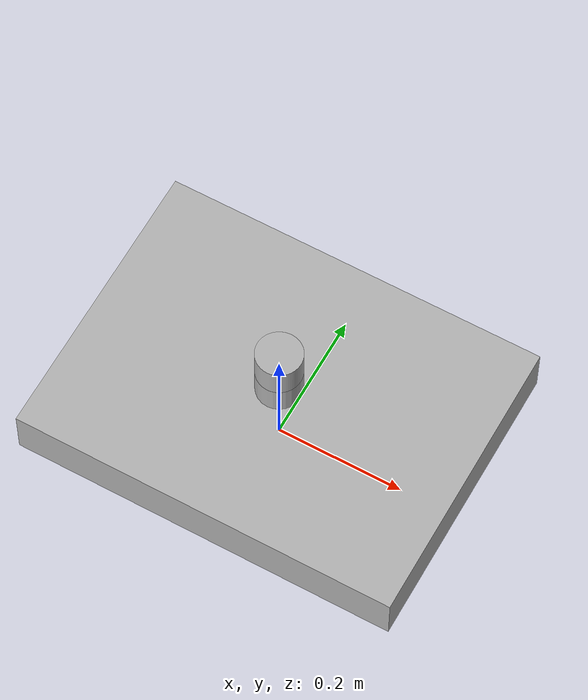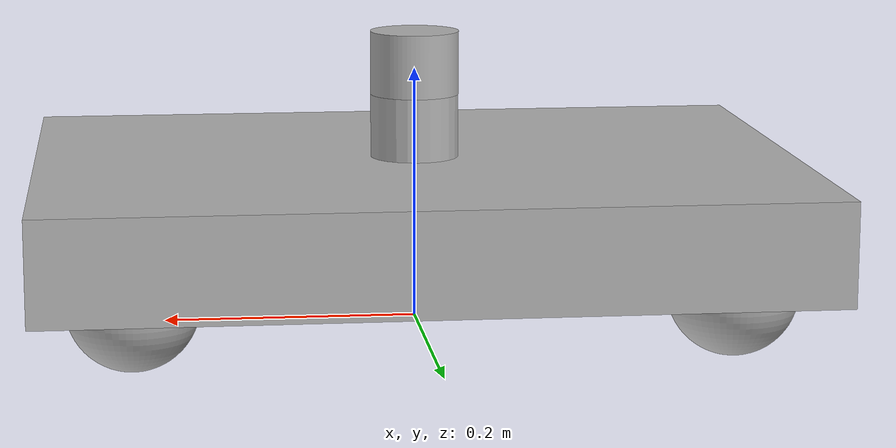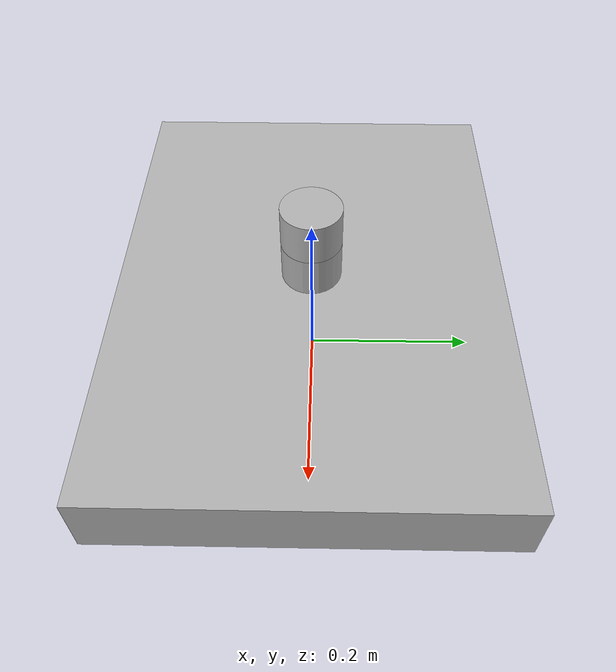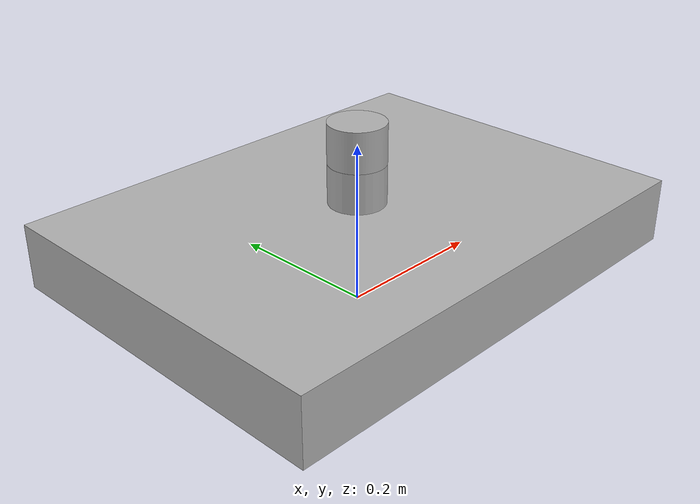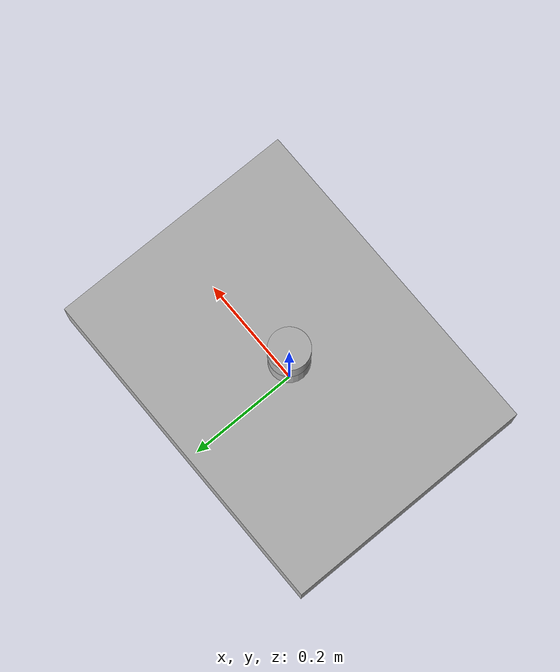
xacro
<?xml version="1.0" ?>
<robot name="planar_move_robot" xmlns:xacro="http://www.ros.org/wiki/xacro">

<xacro:include filename="$(find planar_move_robot_description)/urdf/materials.xacro" />
<xacro:include filename="$(find planar_move_robot_description)/urdf/planar_move_robot.trans" />
<xacro:include filename="$(find planar_move_robot_description)/urdf/planar_move_robot.gazebo" />
<link name="base_link">
  <inertial>
    <origin rpy="0 0 0" xyz="5.4320949295462994e-14 -2.805834157823502e-17 0.09167558624777426"/>
    <mass value="162.85001624086075"/>
    <inertia ixx="2.764455" ixy="0.0" ixz="0.0" iyy="4.758729" iyz="-0.0" izz="7.339706"/>
  </inertial>
  <visual>
    <origin rpy="0 0 0" xyz="0 0 0"/>
    <geometry>
      <mesh filename="package://planar_move_robot_description/meshes/base_link.stl" scale="0.001 0.001 0.001"/>
    </geometry>
    <material name="silver"/>
  </visual>
  <collision>
    <origin rpy="0 0 0" xyz="0 0 0"/>
    <geometry>
      <mesh filename="package://planar_move_robot_description/meshes/base_link.stl" scale="0.001 0.001 0.001"/>
    </geometry>
  </collision>
</link>

<link name="laser">
  <inertial>
    <origin rpy="0 0 0" xyz="-5.908186836859213e-18 0.0 0.024999999999999994"/>
    <mass value="1.5105170177541423"/>
    <inertia ixx="0.000777" ixy="-0.0" ixz="-0.0" iyy="0.000777" iyz="0.0" izz="0.000925"/>
  </inertial>
  <visual>
    <origin rpy="0 0 0" xyz="-0.0 -0.0 -0.18"/>
    <geometry>
      <mesh filename="package://planar_move_robot_description/meshes/lidar_1.stl" scale="0.001 0.001 0.001"/>
    </geometry>
    <material name="silver"/>
  </visual>
  <collision>
    <origin rpy="0 0 0" xyz="-0.0 -0.0 -0.18"/>
    <geometry>
      <mesh filename="package://planar_move_robot_description/meshes/lidar_1.stl" scale="0.001 0.001 0.001"/>
    </geometry>
  </collision>
</link>

<link name="rear_r_1">
  <inertial>
    <origin rpy="0 0 0" xyz="0.0 0.0 0.0"/>
    <mass value="0.4869468613064179"/>
    <inertia ixx="0.000487" ixy="0.0" ixz="-0.0" iyy="0.000487" iyz="0.0" izz="0.000487"/>
  </inertial>
  <visual>
    <origin rpy="0 0 0" xyz="0.225 0.15 -0.05"/>
    <geometry>
      <mesh filename="package://planar_move_robot_description/meshes/rear_r_1.stl" scale="0.001 0.001 0.001"/>
    </geometry>
    <material name="silver"/>
  </visual>
  <collision>
    <origin rpy="0 0 0" xyz="0.225 0.15 -0.05"/>
    <geometry>
      <mesh filename="package://planar_move_robot_description/meshes/rear_r_1.stl" scale="0.001 0.001 0.001"/>
    </geometry>
  </collision>
</link>

<link name="front_r_1">
  <inertial>
    <origin rpy="0 0 0" xyz="0.0 0.0 0.0"/>
    <mass value="0.4869468613064179"/>
    <inertia ixx="0.000487" ixy="0.0" ixz="0.0" iyy="0.000487" iyz="0.0" izz="0.000487"/>
  </inertial>
  <visual>
    <origin rpy="0 0 0" xyz="-0.225 0.15 -0.05"/>
    <geometry>
      <mesh filename="package://planar_move_robot_description/meshes/front_r_1.stl" scale="0.001 0.001 0.001"/>
    </geometry>
    <material name="silver"/>
  </visual>
  <collision>
    <origin rpy="0 0 0" xyz="-0.225 0.15 -0.05"/>
    <geometry>
      <mesh filename="package://planar_move_robot_description/meshes/front_r_1.stl" scale="0.001 0.001 0.001"/>
    </geometry>
  </collision>
</link>

<link name="front_l_1">
  <inertial>
    <origin rpy="0 0 0" xyz="0.0 0.0 0.0"/>
    <mass value="0.4869468613064179"/>
    <inertia ixx="0.000487" ixy="0.0" ixz="0.0" iyy="0.000487" iyz="0.0" izz="0.000487"/>
  </inertial>
  <visual>
    <origin rpy="0 0 0" xyz="-0.225 -0.15 -0.05"/>
    <geometry>
      <mesh filename="package://planar_move_robot_description/meshes/front_l_1.stl" scale="0.001 0.001 0.001"/>
    </geometry>
    <material name="silver"/>
  </visual>
  <collision>
    <origin rpy="0 0 0" xyz="-0.225 -0.15 -0.05"/>
    <geometry>
      <mesh filename="package://planar_move_robot_description/meshes/front_l_1.stl" scale="0.001 0.001 0.001"/>
    </geometry>
  </collision>
</link>

<link name="rear_l_1">
  <inertial>
    <origin rpy="0 0 0" xyz="0.0 0.0 0.0"/>
    <mass value="0.4869468613064179"/>
    <inertia ixx="0.000487" ixy="0.0" ixz="-0.0" iyy="0.000487" iyz="-0.0" izz="0.000487"/>
  </inertial>
  <visual>
    <origin rpy="0 0 0" xyz="0.225 -0.15 -0.05"/>
    <geometry>
      <mesh filename="package://planar_move_robot_description/meshes/rear_l_1.stl" scale="0.001 0.001 0.001"/>
    </geometry>
    <material name="silver"/>
  </visual>
  <collision>
    <origin rpy="0 0 0" xyz="0.225 -0.15 -0.05"/>
    <geometry>
      <mesh filename="package://planar_move_robot_description/meshes/rear_l_1.stl" scale="0.001 0.001 0.001"/>
    </geometry>
  </collision>
</link>

<joint name="Rigid1" type="fixed">
  <origin rpy="0 0 0" xyz="0.0 0.0 0.18"/>
  <parent link="base_link"/>
  <child link="laser"/>
</joint>

<joint name="Rigid2" type="fixed">
  <origin rpy="0 0 0" xyz="-0.225 -0.15 0.05"/>
  <parent link="base_link"/>
  <child link="rear_r_1"/>
</joint>

<joint name="Rigid3" type="fixed">
  <origin rpy="0 0 0" xyz="0.225 -0.15 0.05"/>
  <parent link="base_link"/>
  <child link="front_r_1"/>
</joint>

<joint name="Rigid4" type="fixed">
  <origin rpy="0 0 0" xyz="0.225 0.15 0.05"/>
  <parent link="base_link"/>
  <child link="front_l_1"/>
</joint>

<joint name="Rigid5" type="fixed">
  <origin rpy="0 0 0" xyz="-0.225 0.15 0.05"/>
  <parent link="base_link"/>
  <child link="rear_l_1"/>
</joint>

</robot>

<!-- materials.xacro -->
<robot name="planar_move_robot" xmlns:xacro="http://www.ros.org/wiki/xacro" >

<material name="silver">
  <color rgba="0.700 0.700 0.700 1.000"/>
</material>

</robot>

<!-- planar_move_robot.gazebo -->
<robot name="planar_move_robot" xmlns:xacro="http://www.ros.org/wiki/xacro" >

<xacro:property name="body_color" value="Gazebo/Silver" />

<gazebo>
  <plugin filename="libgazebo_ros_control.so" name="control"/>
</gazebo>
<gazebo reference="base_link">
  <material>${body_color}</material>
  <mu1>0.2</mu1>
  <mu2>0.2</mu2>
  <selfCollide>true</selfCollide>
  <gravity>true</gravity>
</gazebo>

<gazebo reference="laser">
  <material>${body_color}</material>
  <mu1>0.2</mu1>
  <mu2>0.2</mu2>
  <selfCollide>true</selfCollide>
</gazebo>

<gazebo reference="rear_r_1">
  <material>${body_color}</material>
  <mu1>0.0002</mu1>
  <mu2>0.0002</mu2>
  <selfCollide>true</selfCollide>
</gazebo>

<gazebo reference="front_r_1">
  <material>${body_color}</material>
  <mu1>0.0002</mu1>
  <mu2>0.0002</mu2>
  <selfCollide>true</selfCollide>
</gazebo>

<gazebo reference="front_l_1">
  <material>${body_color}</material>
  <mu1>0.0002</mu1>
  <mu2>0.0002</mu2>
  <selfCollide>true</selfCollide>
</gazebo>

<gazebo reference="rear_l_1">
  <material>${body_color}</material>
  <mu1>0.0002</mu1>
  <mu2>0.0002</mu2>
  <selfCollide>true</selfCollide>
</gazebo>

<!-- Planar move -->
<gazebo>
  <plugin name="object_controller" filename="libgazebo_ros_planar_move.so">
    <commandTopic>cmd_vel</commandTopic>
    <odometryTopic>odom</odometryTopic>
    <odometryFrame>odom</odometryFrame>
    <odometryRate>20.0</odometryRate>
    <robotBaseFrame>base_link</robotBaseFrame>
  </plugin>
</gazebo>

<!-- Lidar -->
  <gazebo reference="laser">
    <sensor type="gpu_ray" name="RP_Lidar_A1">
      <pose>0 0 0 0 0 0</pose>
      <visualize>false</visualize>
      <update_rate>40</update_rate>
      <ray>
        <scan>
          <horizontal>
            <samples>720</samples>
            <resolution>1</resolution>
            <min_angle>-3.14159265359</min_angle>
            <max_angle>3.14159265359</max_angle>
          </horizontal>
        </scan>
        <range>
          <min>0.10</min>
          <max>30.0</max>
          <resolution>0.01</resolution>
        </range>
        <noise>
          <type>gaussian</type>
          <mean>0.0</mean>
          <stddev>0.01</stddev>
        </noise>
      </ray>
      <plugin name="gazebo_ros_head_hokuyo_controller" filename="libgazebo_ros_gpu_laser.so">
        <topicName>/scan</topicName>
        <frameName>laser</frameName>
      </plugin>
    </sensor>
  </gazebo>

</robot>
